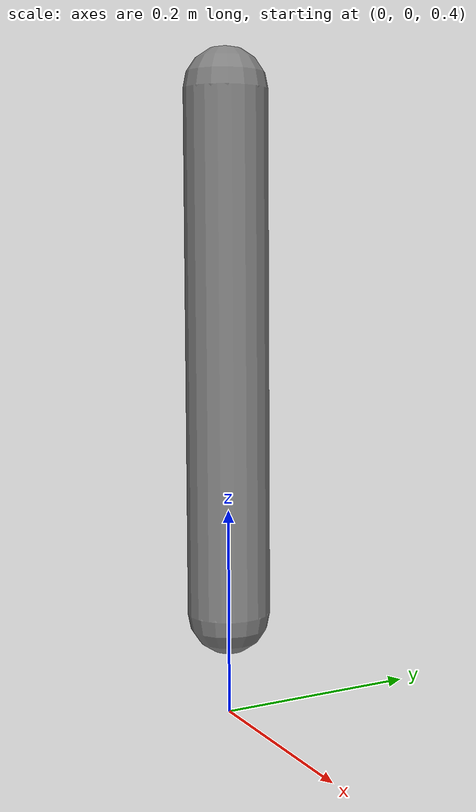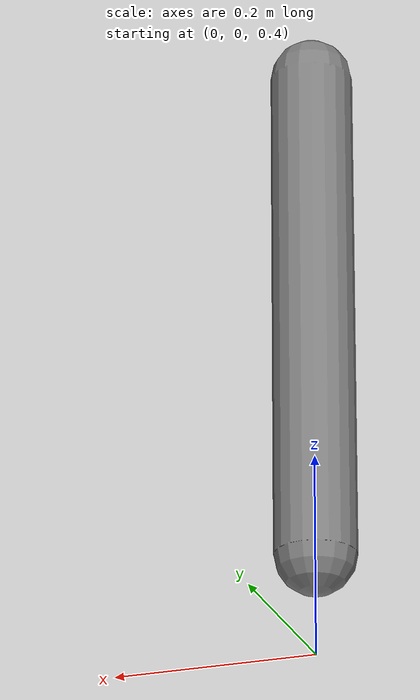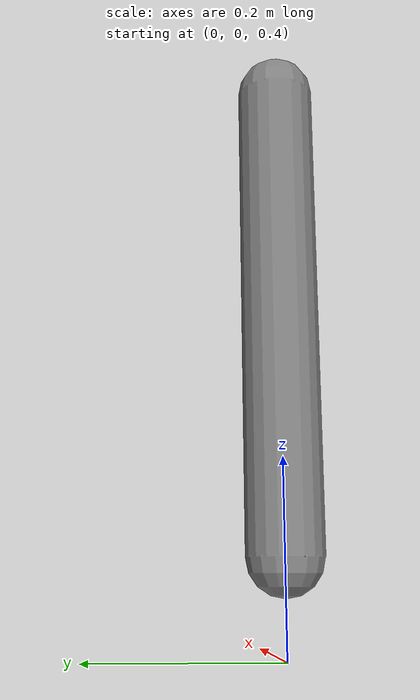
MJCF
<mujoco model="single_pendulum">
  <option gravity="0 0 -9.81" timestep="0.002"/>

  <worldbody>
    <body name="link" pos="0 0 1">
      <joint name="hinge" type="hinge" axis="0 1 0" damping="0.02"/>
      <geom type="capsule" fromto="0 0 0 0 0 -0.5" size="0.04" mass="1"/>
    </body>
  </worldbody>

  <actuator>
    <!-- 写法 A:让 MuJoCo 帮你实现 PD -->
    <position name="pos_act" joint="hinge" kp="20" kv="1" ctrlrange="-3.14 3.14"/>

    <!-- 写法 B:自己在 Python 里手搓 PD -->
    <motor    name="tor_act" joint="hinge" ctrlrange="-5 5"/>
  </actuator>
</mujoco>
